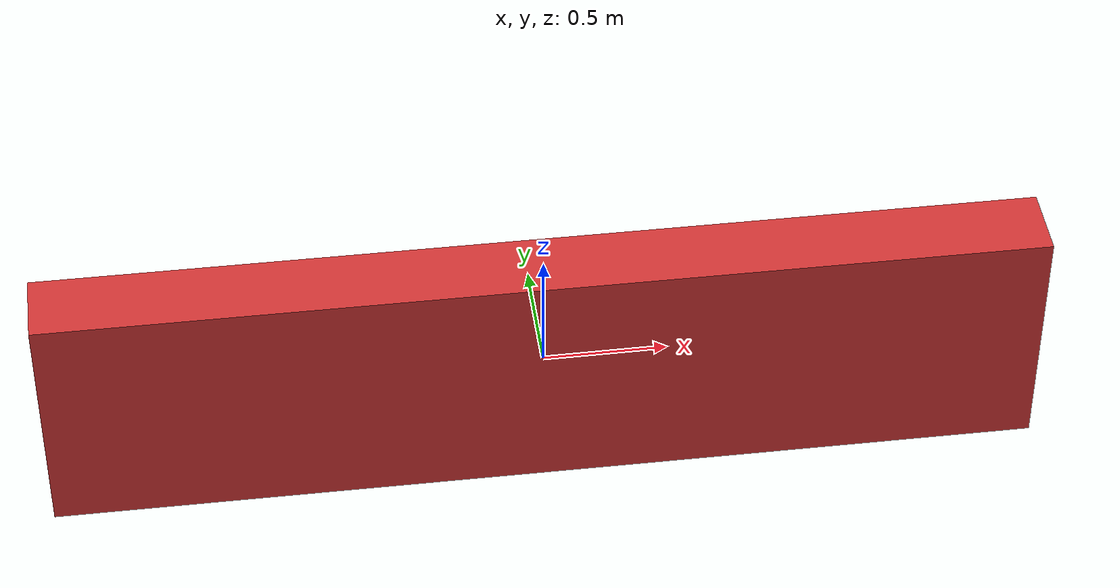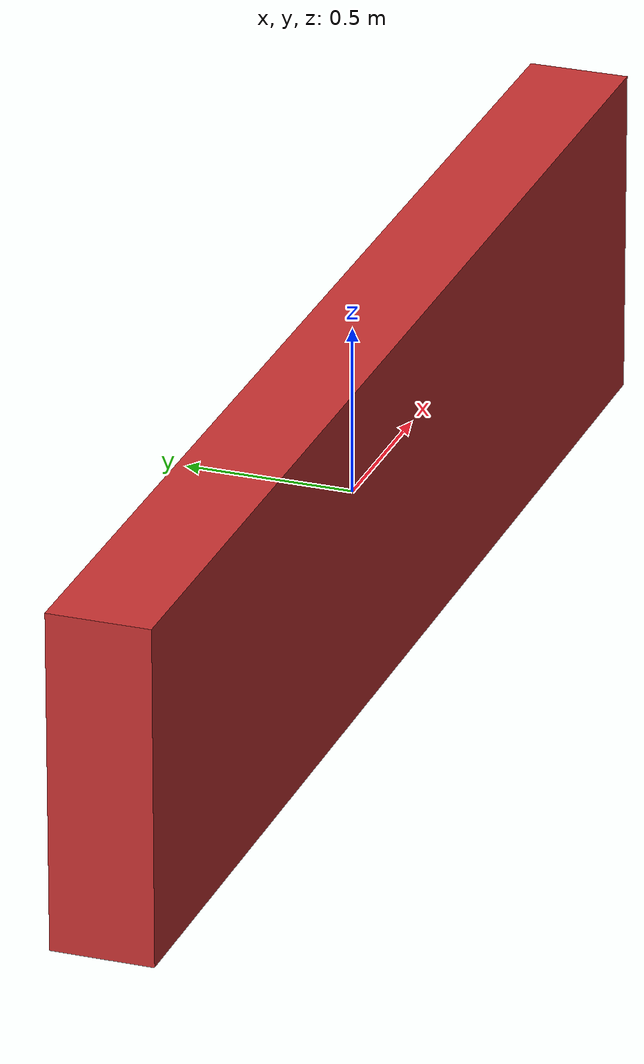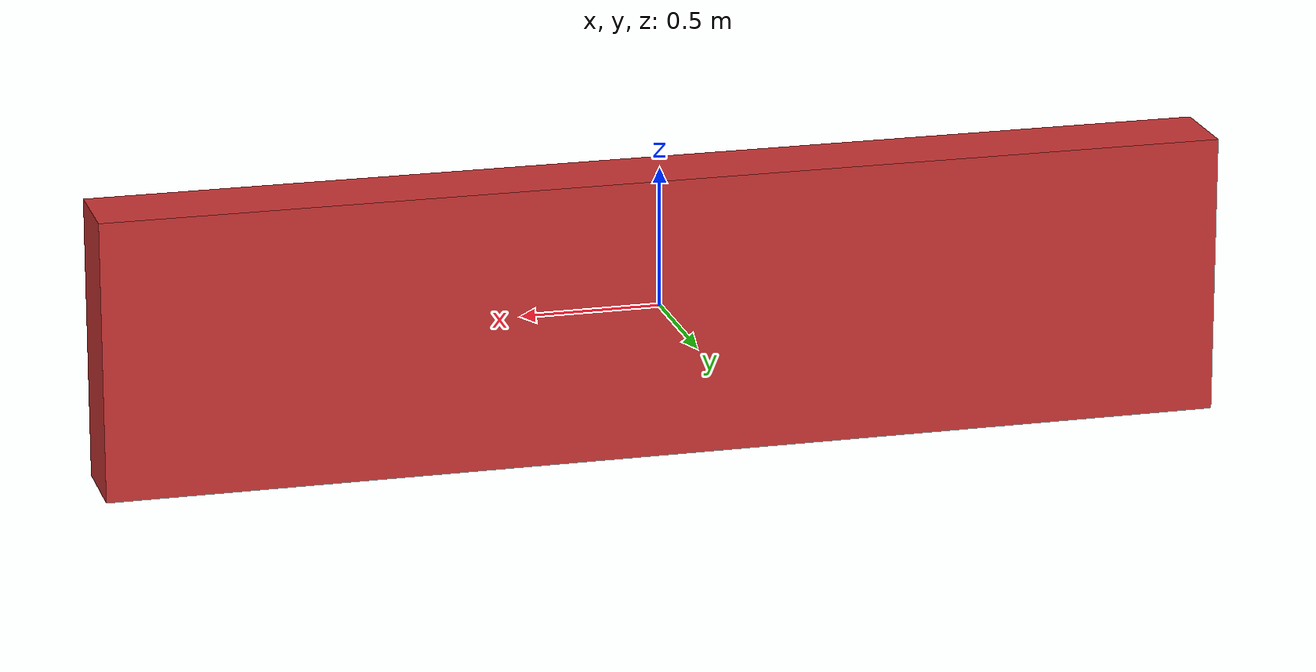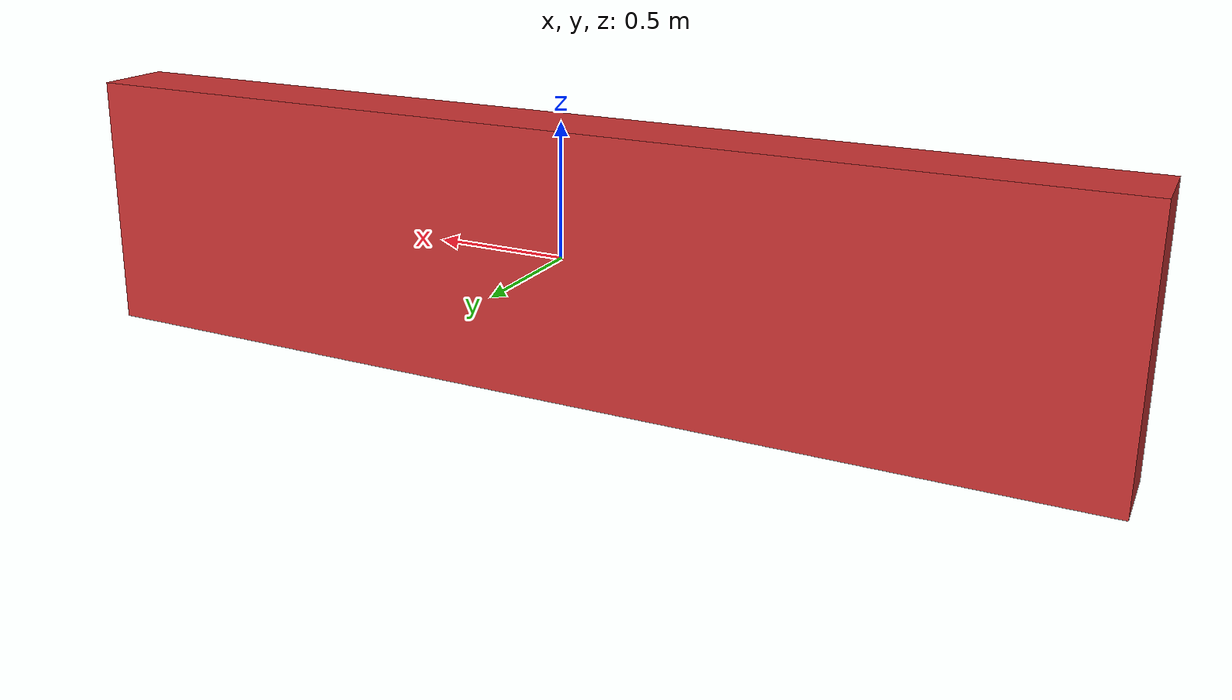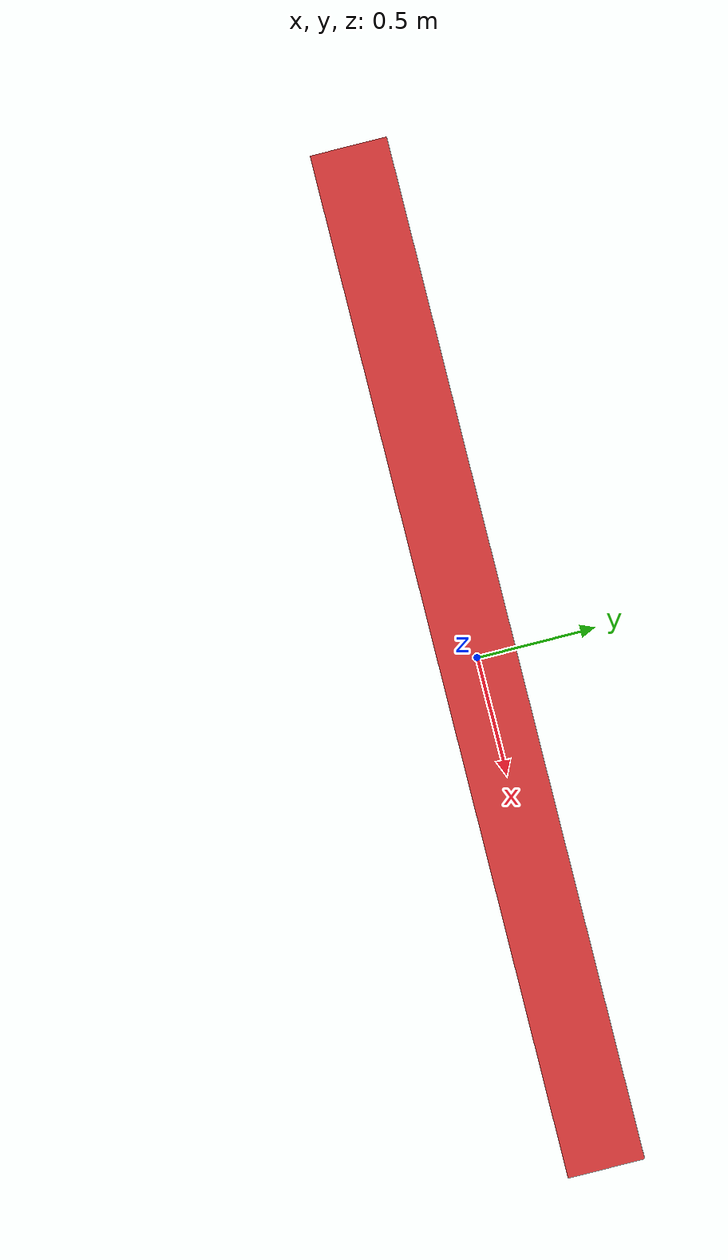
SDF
<?xml version="1.0"?>
<sdf version="1.6">
  <model name="wall_obstacle">
    <static>true</static>
    <link name="link">
      <collision name="col">
        <geometry>
          <box><size>4.0 0.3 1.0</size></box>
        </geometry>
      </collision>
      <visual name="vis">
        <geometry>
          <box><size>4.0 0.3 1.0</size></box>
        </geometry>
        <material>
          <ambient>0.8 0.2 0.2 1.0</ambient>
          <diffuse>0.8 0.2 0.2 1.0</diffuse>
        </material>
      </visual>
    </link>
  </model>
</sdf>
